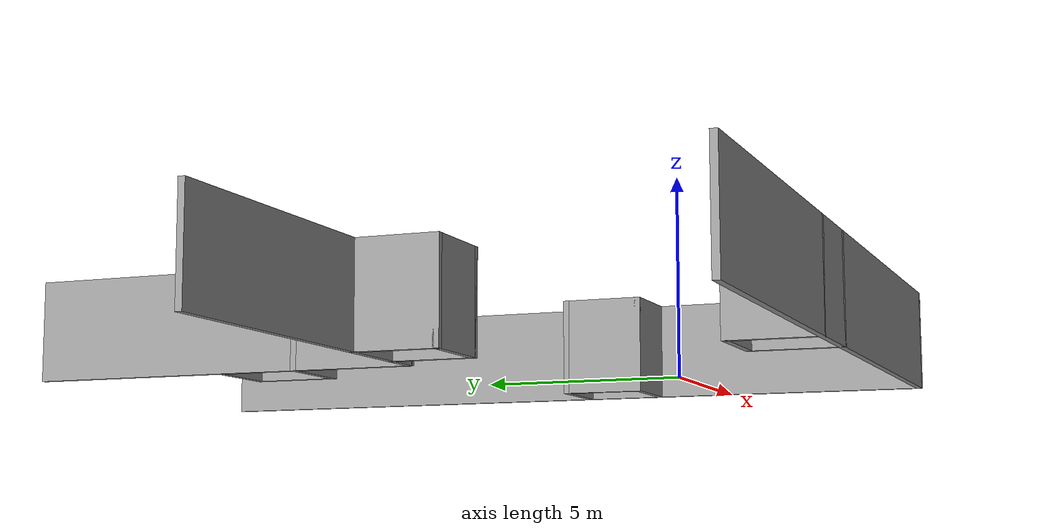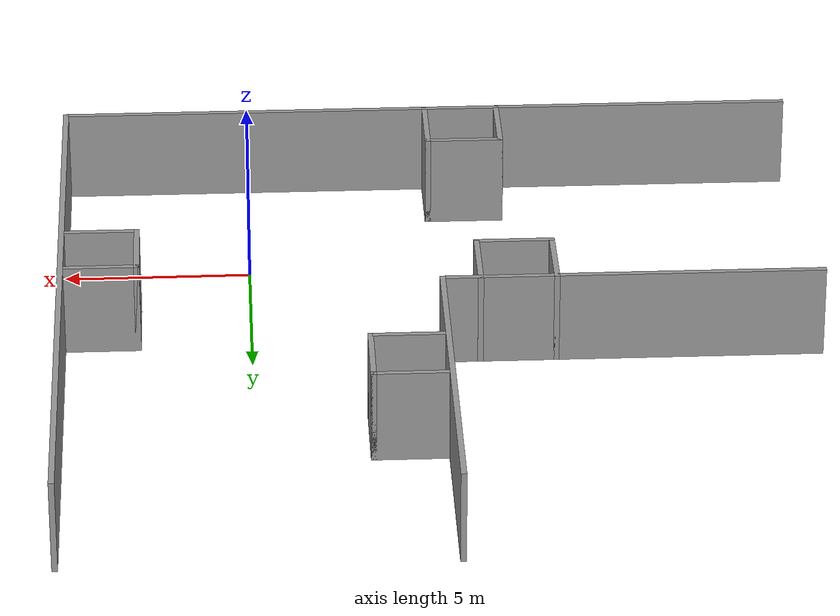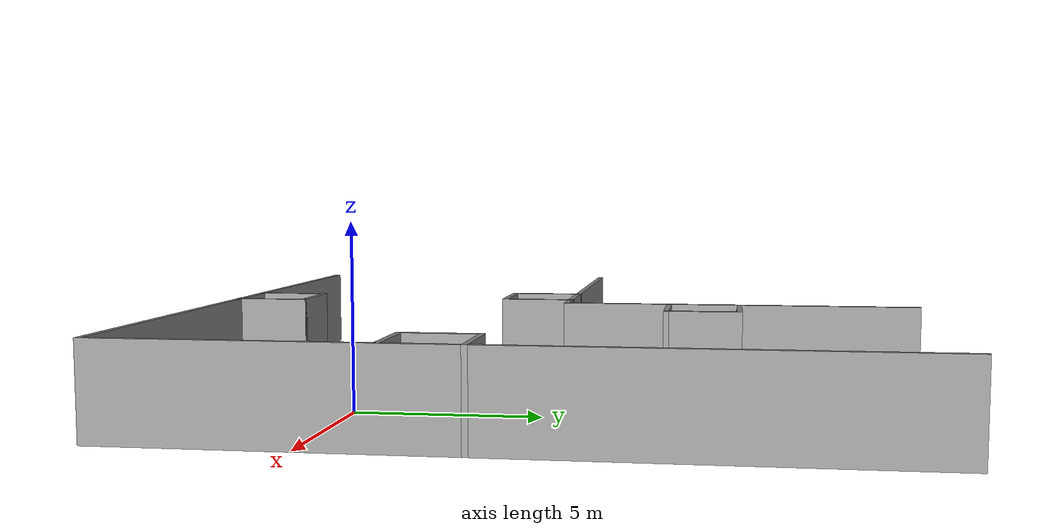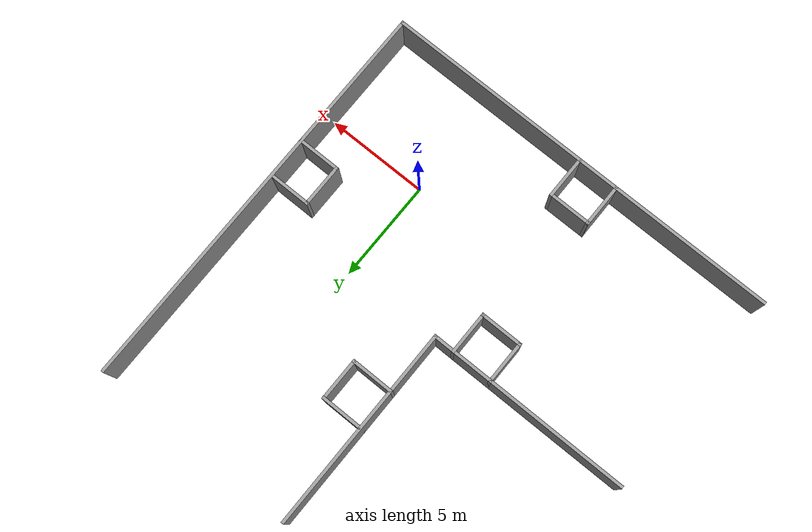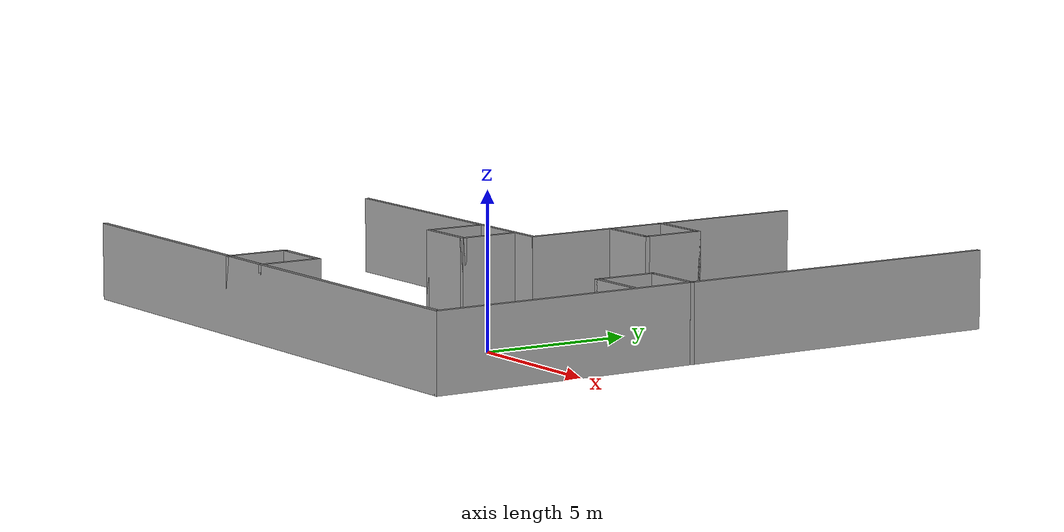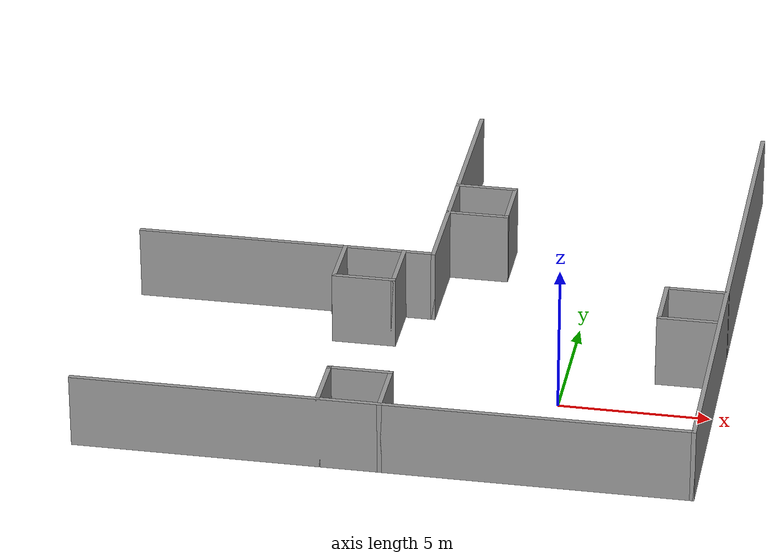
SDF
<?xml version='1.0'?>
<sdf version='1.6'>
  <model name='part2room'>
    <pose frame=''>-4.99982 5 0 0 -0 0</pose>
    <link name='Wall_27'>
      <collision name='Wall_27_Collision'>
        <geometry>
          <box>
            <size>20.15 0.15 2.5</size>
          </box>
        </geometry>
        <pose frame=''>0 0 1.25 0 -0 0</pose>
      </collision>
      <visual name='Wall_27_Visual'>
        <pose frame=''>0 0 1.25 0 -0 0</pose>
        <geometry>
          <box>
            <size>20.15 0.15 2.5</size>
          </box>
        </geometry>
        <material>
          <script>
            <uri>file://media/materials/scripts/gazebo.material</uri>
            <name>Gazebo/Grey</name>
          </script>
          <ambient>1 1 1 1</ambient>
        </material>
      </visual>
      <pose frame=''>-0.000179 -10 0 0 -0 0</pose>
    </link>
    <link name='Wall_28'>
      <collision name='Wall_28_Collision'>
        <geometry>
          <box>
            <size>20.15 0.15 2.5</size>
          </box>
        </geometry>
        <pose frame=''>0 0 1.25 0 -0 0</pose>
      </collision>
      <visual name='Wall_28_Visual'>
        <pose frame=''>0 0 1.25 0 -0 0</pose>
        <geometry>
          <box>
            <size>20.15 0.15 2.5</size>
          </box>
        </geometry>
        <material>
          <script>
            <uri>file://media/materials/scripts/gazebo.material</uri>
            <name>Gazebo/Grey</name>
          </script>
          <ambient>1 1 1 1</ambient>
        </material>
      </visual>
      <pose frame=''>9.99982 0 0 0 -0 1.5708</pose>
    </link>
    <link name='Wall_30'>
      <collision name='Wall_30_Collision'>
        <geometry>
          <box>
            <size>10.15 0.15 2.5</size>
          </box>
        </geometry>
        <pose frame=''>0 0 1.25 0 -0 0</pose>
      </collision>
      <visual name='Wall_30_Visual'>
        <pose frame=''>0 0 1.25 0 -0 0</pose>
        <geometry>
          <box>
            <size>10.15 0.15 2.5</size>
          </box>
        </geometry>
        <material>
          <script>
            <uri>file://media/materials/scripts/gazebo.material</uri>
            <name>Gazebo/Grey</name>
          </script>
          <ambient>1 1 1 1</ambient>
        </material>
      </visual>
      <pose frame=''>-5.00018 0 0 0 -0 0</pose>
    </link>
    <link name='Wall_31'>
      <collision name='Wall_31_Collision'>
        <geometry>
          <box>
            <size>10.15 0.15 2.5</size>
          </box>
        </geometry>
        <pose frame=''>0 0 1.25 0 -0 0</pose>
      </collision>
      <visual name='Wall_31_Visual'>
        <pose frame=''>0 0 1.25 0 -0 0</pose>
        <geometry>
          <box>
            <size>10.15 0.15 2.5</size>
          </box>
        </geometry>
        <material>
          <script>
            <uri>file://media/materials/scripts/gazebo.material</uri>
            <name>Gazebo/Grey</name>
          </script>
          <ambient>1 1 1 1</ambient>
        </material>
      </visual>
      <pose frame=''>-0.000179 5 0 0 -0 1.5708</pose>
    </link>
    <link name='Wall_33'>
      <collision name='Wall_33_Collision'>
        <geometry>
          <box>
            <size>2.15 0.15 2.5</size>
          </box>
        </geometry>
        <pose frame=''>0 0 1.25 0 -0 0</pose>
      </collision>
      <visual name='Wall_33_Visual'>
        <pose frame=''>0 0 1.25 0 -0 0</pose>
        <geometry>
          <box>
            <size>2.15 0.15 2.5</size>
          </box>
        </geometry>
        <material>
          <script>
            <uri>file://media/materials/scripts/gazebo.material</uri>
            <name>Gazebo/Grey</name>
          </script>
          <ambient>1 1 1 1</ambient>
        </material>
      </visual>
      <pose frame=''>-2.00018 -9 0 0 -0 1.5708</pose>
    </link>
    <link name='Wall_34'>
      <collision name='Wall_34_Collision'>
        <geometry>
          <box>
            <size>2.15 0.15 2.5</size>
          </box>
        </geometry>
        <pose frame=''>0 0 1.25 0 -0 0</pose>
      </collision>
      <visual name='Wall_34_Visual'>
        <pose frame=''>0 0 1.25 0 -0 0</pose>
        <geometry>
          <box>
            <size>2.15 0.15 2.5</size>
          </box>
        </geometry>
        <material>
          <script>
            <uri>file://media/materials/scripts/gazebo.material</uri>
            <name>Gazebo/Grey</name>
          </script>
          <ambient>1 1 1 1</ambient>
        </material>
      </visual>
      <pose frame=''>-1.00018 -8 0 0 -0 0</pose>
    </link>
    <link name='Wall_35'>
      <collision name='Wall_35_Collision'>
        <geometry>
          <box>
            <size>2.15 0.15 2.5</size>
          </box>
        </geometry>
        <pose frame=''>0 0 1.25 0 -0 0</pose>
      </collision>
      <visual name='Wall_35_Visual'>
        <pose frame=''>0 0 1.25 0 -0 0</pose>
        <geometry>
          <box>
            <size>2.15 0.15 2.5</size>
          </box>
        </geometry>
        <material>
          <script>
            <uri>file://media/materials/scripts/gazebo.material</uri>
            <name>Gazebo/Grey</name>
          </script>
          <ambient>1 1 1 1</ambient>
        </material>
      </visual>
      <pose frame=''>-0.000179 -9 0 0 0 -1.5708</pose>
    </link>
    <link name='Wall_37'>
      <collision name='Wall_37_Collision'>
        <geometry>
          <box>
            <size>2.15072 0.15 2.5</size>
          </box>
        </geometry>
        <pose frame=''>0 0 1.25 0 -0 0</pose>
      </collision>
      <visual name='Wall_37_Visual'>
        <pose frame=''>0 0 1.25 0 -0 0</pose>
        <geometry>
          <box>
            <size>2.15072 0.15 2.5</size>
          </box>
        </geometry>
        <material>
          <script>
            <uri>file://media/materials/scripts/gazebo.material</uri>
            <name>Gazebo/Grey</name>
          </script>
          <ambient>1 1 1 1</ambient>
        </material>
      </visual>
      <pose frame=''>8.99982 -1 0 0 -0 3.14159</pose>
    </link>
    <link name='Wall_38'>
      <collision name='Wall_38_Collision'>
        <geometry>
          <box>
            <size>2.15 0.15 2.5</size>
          </box>
        </geometry>
        <pose frame=''>0 0 1.25 0 -0 0</pose>
      </collision>
      <visual name='Wall_38_Visual'>
        <pose frame=''>0 0 1.25 0 -0 0</pose>
        <geometry>
          <box>
            <size>2.15 0.15 2.5</size>
          </box>
        </geometry>
        <material>
          <script>
            <uri>file://media/materials/scripts/gazebo.material</uri>
            <name>Gazebo/Grey</name>
          </script>
          <ambient>1 1 1 1</ambient>
        </material>
      </visual>
      <pose frame=''>7.99982 -2 0 0 0 -1.5708</pose>
    </link>
    <link name='Wall_39'>
      <collision name='Wall_39_Collision'>
        <geometry>
          <box>
            <size>2.15 0.15 2.5</size>
          </box>
        </geometry>
        <pose frame=''>0 0 1.25 0 -0 0</pose>
      </collision>
      <visual name='Wall_39_Visual'>
        <pose frame=''>0 0 1.25 0 -0 0</pose>
        <geometry>
          <box>
            <size>2.15 0.15 2.5</size>
          </box>
        </geometry>
        <material>
          <script>
            <uri>file://media/materials/scripts/gazebo.material</uri>
            <name>Gazebo/Grey</name>
          </script>
          <ambient>1 1 1 1</ambient>
        </material>
      </visual>
      <pose frame=''>8.99982 -3 0 0 -0 0</pose>
    </link>
    <link name='Wall_41'>
      <collision name='Wall_41_Collision'>
        <geometry>
          <box>
            <size>2.15 0.15 2.5</size>
          </box>
        </geometry>
        <pose frame=''>0 0 1.25 0 -0 0</pose>
      </collision>
      <visual name='Wall_41_Visual'>
        <pose frame=''>0 0 1.25 0 -0 0</pose>
        <geometry>
          <box>
            <size>2.15 0.15 2.5</size>
          </box>
        </geometry>
        <material>
          <script>
            <uri>file://media/materials/scripts/gazebo.material</uri>
            <name>Gazebo/Grey</name>
          </script>
          <ambient>1 1 1 1</ambient>
        </material>
      </visual>
      <pose frame=''>0.999821 5 0 0 -0 0</pose>
    </link>
    <link name='Wall_42'>
      <collision name='Wall_42_Collision'>
        <geometry>
          <box>
            <size>2.15 0.15 2.5</size>
          </box>
        </geometry>
        <pose frame=''>0 0 1.25 0 -0 0</pose>
      </collision>
      <visual name='Wall_42_Visual'>
        <pose frame=''>0 0 1.25 0 -0 0</pose>
        <geometry>
          <box>
            <size>2.15 0.15 2.5</size>
          </box>
        </geometry>
        <material>
          <script>
            <uri>file://media/materials/scripts/gazebo.material</uri>
            <name>Gazebo/Grey</name>
          </script>
          <ambient>1 1 1 1</ambient>
        </material>
      </visual>
      <pose frame=''>1.99982 4 0 0 0 -1.5708</pose>
    </link>
    <link name='Wall_43'>
      <collision name='Wall_43_Collision'>
        <geometry>
          <box>
            <size>2.15 0.15 2.5</size>
          </box>
        </geometry>
        <pose frame=''>0 0 1.25 0 -0 0</pose>
      </collision>
      <visual name='Wall_43_Visual'>
        <pose frame=''>0 0 1.25 0 -0 0</pose>
        <geometry>
          <box>
            <size>2.15 0.15 2.5</size>
          </box>
        </geometry>
        <material>
          <script>
            <uri>file://media/materials/scripts/gazebo.material</uri>
            <name>Gazebo/Grey</name>
          </script>
          <ambient>1 1 1 1</ambient>
        </material>
      </visual>
      <pose frame=''>0.999821 3 0 0 -0 3.14159</pose>
    </link>
    <link name='Wall_45'>
      <collision name='Wall_45_Collision'>
        <geometry>
          <box>
            <size>2.15 0.15 2.5</size>
          </box>
        </geometry>
        <pose frame=''>0 0 1.25 0 -0 0</pose>
      </collision>
      <visual name='Wall_45_Visual'>
        <pose frame=''>0 0 1.25 0 -0 0</pose>
        <geometry>
          <box>
            <size>2.15 0.15 2.5</size>
          </box>
        </geometry>
        <material>
          <script>
            <uri>file://media/materials/scripts/gazebo.material</uri>
            <name>Gazebo/Grey</name>
          </script>
          <ambient>1 1 1 1</ambient>
        </material>
      </visual>
      <pose frame=''>-3.00018 -1 0 0 0 -1.5708</pose>
    </link>
    <link name='Wall_46'>
      <collision name='Wall_46_Collision'>
        <geometry>
          <box>
            <size>2.15 0.15 2.5</size>
          </box>
        </geometry>
        <pose frame=''>0 0 1.25 0 -0 0</pose>
      </collision>
      <visual name='Wall_46_Visual'>
        <pose frame=''>0 0 1.25 0 -0 0</pose>
        <geometry>
          <box>
            <size>2.15 0.15 2.5</size>
          </box>
        </geometry>
        <material>
          <script>
            <uri>file://media/materials/scripts/gazebo.material</uri>
            <name>Gazebo/Grey</name>
          </script>
          <ambient>1 1 1 1</ambient>
        </material>
      </visual>
      <pose frame=''>-2.00018 -2 0 0 -0 0</pose>
    </link>
    <link name='Wall_47'>
      <collision name='Wall_47_Collision'>
        <geometry>
          <box>
            <size>2.152 0.15 2.5</size>
          </box>
        </geometry>
        <pose frame=''>0 0 1.25 0 -0 0</pose>
      </collision>
      <visual name='Wall_47_Visual'>
        <pose frame=''>0 0 1.25 0 -0 0</pose>
        <geometry>
          <box>
            <size>2.152 0.15 2.5</size>
          </box>
        </geometry>
        <material>
          <script>
            <uri>file://media/materials/scripts/gazebo.material</uri>
            <name>Gazebo/Grey</name>
          </script>
          <ambient>1 1 1 1</ambient>
        </material>
      </visual>
      <pose frame=''>-1.00018 -0.999 0 0 -0 1.5708</pose>
    </link>
    <static>1</static>
  </model>
</sdf>
